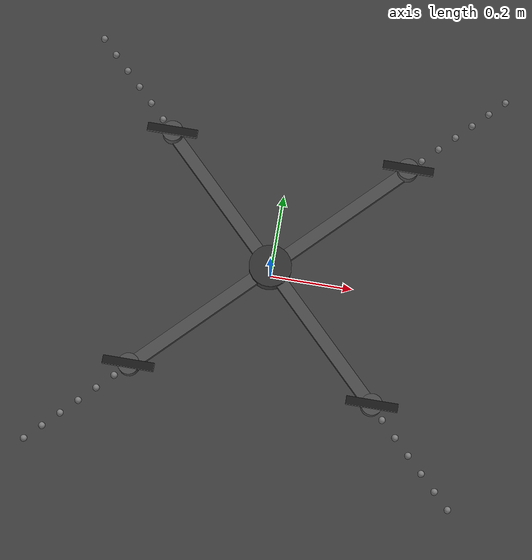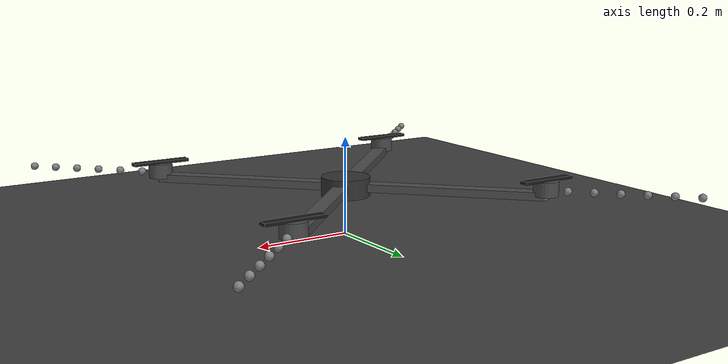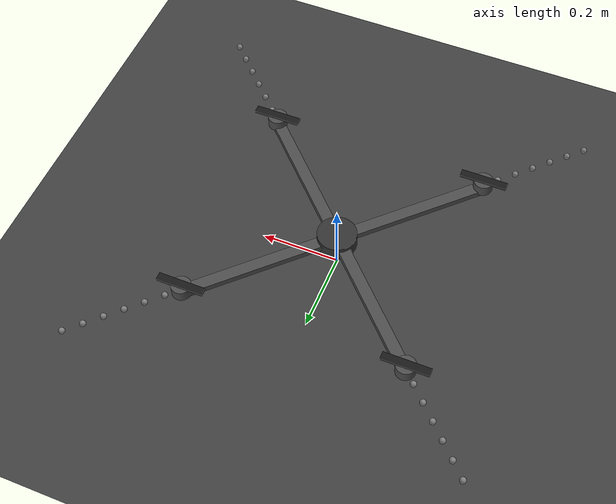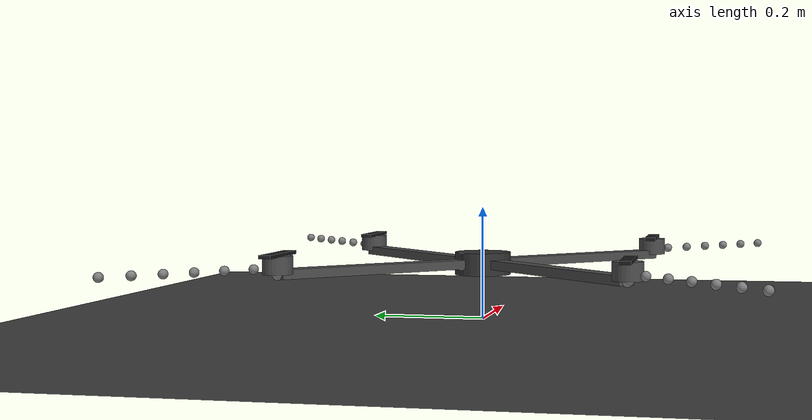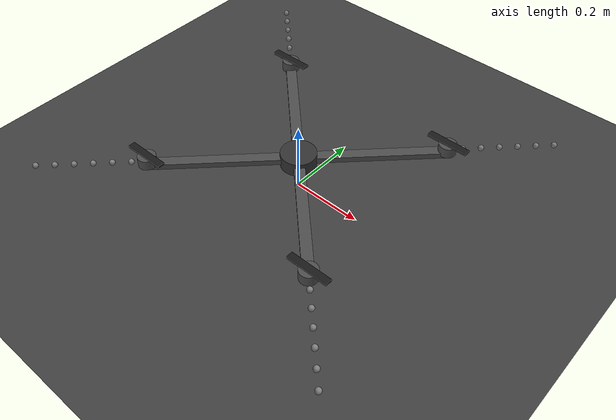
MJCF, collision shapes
<mujoco model="spinning_drone">
  <compiler angle="degree"/>
  <option timestep="0.001" gravity="0 0 -9.81" integrator="RK4"/>

  <visual>
    <headlight ambient="0.5 0.5 0.5"/>
  </visual>

  <asset>
    <texture name="grid" type="2d" builtin="checker" width="512" height="512" rgb1="0.2 0.2 0.2" rgb2="0.3 0.3 0.3"/>
    <material name="grid" texture="grid" texrepeat="1 1" texuniform="true" reflectance="0.2"/>
    <material name="wing_mat" rgba="0.8 0.3 0.1 0.8"/>
    <material name="motor_mat" rgba="0.3 0.3 0.3 1"/>
    <material name="prop_mat" rgba="0.1 0.1 0.1 0.7"/>

    <!-- Wing blade mesh -->
    <mesh name="wing_blade" file="feb_wing.stl" scale="0.001 0.001 0.001"/>
  </asset>

  <worldbody>
    <light pos="0 0 5" dir="0 0 -1" diffuse="0.8 0.8 0.8"/>
    <geom name="floor" type="plane" size="10 10 0.1" material="grid"/>

    <!-- Main drone body - 800g total mass (quad body + 4 motors) -->
    <!-- Motor bodies add ~293g from geometry, so quad body = 507g -->
    <body name="quad" pos="0 0 0.1" quat="1 0 0 0">
      <joint name="root" type="free"/>
      <!-- Inertia for spinning drone: Izz > Ixx = Iyy for yaw stability -->
      <inertial pos="0 0 0" mass="0.507" diaginertia="0.008 0.008 0.012"/>

      <!-- Central hub -->
      <geom type="cylinder" size="0.05 0.02" pos="0 0 0" rgba="0.2 0.2 0.2 1"/>

      <!-- Motor arms (X-configuration) - extend to r=0.4m -->
      <!-- Arm 1: +X+Y direction (45°) -->
      <geom type="box" size="0.20 0.015 0.008" pos="0.14 0.14 0" euler="0 0 45" rgba="0.3 0.3 0.3 1"/>
      <!-- Arm 2: -X+Y direction (135°) -->
      <geom type="box" size="0.20 0.015 0.008" pos="-0.14 0.14 0" euler="0 0 -45" rgba="0.3 0.3 0.3 1"/>
      <!-- Arm 3: -X-Y direction (225°) -->
      <geom type="box" size="0.20 0.015 0.008" pos="-0.14 -0.14 0" euler="0 0 45" rgba="0.3 0.3 0.3 1"/>
      <!-- Arm 4: +X-Y direction (315°) -->
      <geom type="box" size="0.20 0.015 0.008" pos="0.14 -0.14 0" euler="0 0 -45" rgba="0.3 0.3 0.3 1"/>

      <!-- MOTOR 1: Position at r=0.4m, angle=45° (+X+Y) -->
      <!-- Position: (0.4*cos(45°), 0.4*sin(45°), 0) = (0.283, 0.283, 0) -->
      <!-- Tilt axis: tangent to circle = (-sin(45°), cos(45°), 0) = (-0.707, 0.707, 0) -->
      <body name="motor1" pos="0.283 0.283 0">
        <!-- Tilt joint: rotates thrust vector tangentially (in direction of spin) -->
        <joint name="motor1_tilt" type="hinge" axis="-0.707 0.707 0" range="-60 60" damping="0.1"/>
        <geom type="cylinder" size="0.025 0.015" pos="0 0 0.015" material="motor_mat"/>
        <geom type="box" size="0.06 0.01 0.003" pos="0 0 0.032" material="prop_mat"/>
        <site name="thrust1" pos="0 0 0" size="0.01"/>
      </body>

      <!-- MOTOR 2: Position at r=0.4m, angle=135° (-X+Y) -->
      <!-- Position: (0.4*cos(135°), 0.4*sin(135°), 0) = (-0.283, 0.283, 0) -->
      <!-- Tilt axis: tangent = (-sin(135°), cos(135°), 0) = (-0.707, -0.707, 0) -->
      <body name="motor2" pos="-0.283 0.283 0">
        <joint name="motor2_tilt" type="hinge" axis="-0.707 -0.707 0" range="-60 60" damping="0.1"/>
        <geom type="cylinder" size="0.025 0.015" pos="0 0 0.015" material="motor_mat"/>
        <geom type="box" size="0.06 0.01 0.003" pos="0 0 0.032" material="prop_mat"/>
        <site name="thrust2" pos="0 0 0" size="0.01"/>
      </body>

      <!-- MOTOR 3: Position at r=0.4m, angle=225° (-X-Y) -->
      <!-- Position: (-0.283, -0.283, 0) -->
      <!-- Tilt axis: tangent = (-sin(225°), cos(225°), 0) = (0.707, -0.707, 0) -->
      <body name="motor3" pos="-0.283 -0.283 0">
        <joint name="motor3_tilt" type="hinge" axis="0.707 -0.707 0" range="-60 60" damping="0.1"/>
        <geom type="cylinder" size="0.025 0.015" pos="0 0 0.015" material="motor_mat"/>
        <geom type="box" size="0.06 0.01 0.003" pos="0 0 0.032" material="prop_mat"/>
        <site name="thrust3" pos="0 0 0" size="0.01"/>
      </body>

      <!-- MOTOR 4: Position at r=0.4m, angle=315° (+X-Y) -->
      <!-- Position: (0.283, -0.283, 0) -->
      <!-- Tilt axis: tangent = (-sin(315°), cos(315°), 0) = (0.707, 0.707, 0) -->
      <body name="motor4" pos="0.283 -0.283 0">
        <joint name="motor4_tilt" type="hinge" axis="0.707 0.707 0" range="-60 60" damping="0.1"/>
        <geom type="cylinder" size="0.025 0.015" pos="0 0 0.015" material="motor_mat"/>
        <geom type="box" size="0.06 0.01 0.003" pos="0 0 0.032" material="prop_mat"/>
        <site name="thrust4" pos="0 0 0" size="0.01"/>
      </body>

      <!-- WING 1: Blade from r=0.4m to r=0.65m along +X+Y direction (45°) -->
      <!-- Wing sections for force application -->
      <!-- Wing body at root position (r=0.4m) for controlled rotation -->
      <body name="wing1_root" pos="0.283 0.283 0.01" euler="0 0 45">
        <!-- Massless wing - visual only -->
        <inertial pos="0 0 0" mass="0.001" diaginertia="0.000001 0.000001 0.000001"/>
        <!-- Wing visual geometry - positioned relative to wing root -->
        <!-- Adjust the pos offset here if your STL origin isn't at root -->
        <geom name="wing1_vis" type="mesh" mesh="wing_blade" pos="-0.12 0.25 0" euler="0 90 180" material="wing_mat" contype="0" conaffinity="0"/>

        <!-- Wing section sites in LOCAL coordinates (along +X from root) -->
        <site name="wing1_s1" pos="0.042 0 0" size="0.008"/>  <!-- r=0.42, 0.042m from root -->
        <site name="wing1_s2" pos="0.092 0 0" size="0.008"/>  <!-- r=0.46, 0.092m from root -->
        <site name="wing1_s3" pos="0.142 0 0" size="0.008"/>
        <site name="wing1_s4" pos="0.192 0 0" size="0.008"/>
        <site name="wing1_s5" pos="0.242 0 0" size="0.008"/>
        <site name="wing1_s6" pos="0.292 0 0" size="0.008"/>
      </body>

      <!-- WING 2: Blade from r=0.4m to r=0.65m along -X+Y direction (135°) -->
      <body name="wing2_root" pos="-0.283 0.283 0.01" euler="0 0 135">
        <inertial pos="0 0 0" mass="0.001" diaginertia="0.000001 0.000001 0.000001"/>
        <geom name="wing2_vis" type="mesh" mesh="wing_blade" pos="-0.12 0.25 0" euler="0 90 180" material="wing_mat" contype="0" conaffinity="0"/>
        <site name="wing2_s1" pos="0.042 0 0" size="0.008"/>
        <site name="wing2_s2" pos="0.092 0 0" size="0.008"/>
        <site name="wing2_s3" pos="0.142 0 0" size="0.008"/>
        <site name="wing2_s4" pos="0.192 0 0" size="0.008"/>
        <site name="wing2_s5" pos="0.242 0 0" size="0.008"/>
        <site name="wing2_s6" pos="0.292 0 0" size="0.008"/>
      </body>

      <!-- WING 3: Blade from r=0.4m to r=0.65m along -X-Y direction (225°) -->
      <body name="wing3_root" pos="-0.283 -0.283 0.01" euler="0 0 225">
        <inertial pos="0 0 0" mass="0.001" diaginertia="0.000001 0.000001 0.000001"/>
        <geom name="wing3_vis" type="mesh" mesh="wing_blade" pos="-0.12 0.25 0" euler="0 90 180" material="wing_mat" contype="0" conaffinity="0"/>
        <site name="wing3_s1" pos="0.042 0 0" size="0.008"/>
        <site name="wing3_s2" pos="0.092 0 0" size="0.008"/>
        <site name="wing3_s3" pos="0.142 0 0" size="0.008"/>
        <site name="wing3_s4" pos="0.192 0 0" size="0.008"/>
        <site name="wing3_s5" pos="0.242 0 0" size="0.008"/>
        <site name="wing3_s6" pos="0.292 0 0" size="0.008"/>
      </body>

      <!-- WING 4: Blade from r=0.4m to r=0.65m along +X-Y direction (315°) -->
      <body name="wing4_root" pos="0.283 -0.283 0.01" euler="0 0 315">
        <inertial pos="0 0 0" mass="0.001" diaginertia="0.000001 0.000001 0.000001"/>
        <geom name="wing4_vis" type="mesh" mesh="wing_blade" pos="-0.12 0.25 0" euler="0 90 180" material="wing_mat" contype="0" conaffinity="0"/>
        <site name="wing4_s1" pos="0.042 0 0" size="0.008"/>
        <site name="wing4_s2" pos="0.092 0 0" size="0.008"/>
        <site name="wing4_s3" pos="0.142 0 0" size="0.008"/>
        <site name="wing4_s4" pos="0.192 0 0" size="0.008"/>
        <site name="wing4_s5" pos="0.242 0 0" size="0.008"/>
        <site name="wing4_s6" pos="0.292 0 0" size="0.008"/>
      </body>

      <!-- Camera for visualization -->
      <camera name="track" mode="trackcom" pos="0 -2 1.5" xyaxes="1 0 0 0 0.5 1"/>
      <camera name="top" mode="trackcom" pos="0 0 3" xyaxes="1 0 0 0 1 0"/>
    </body>
  </worldbody>

  <!-- Actuators for motor tilt control (visual only - flight forces applied via mj_applyFT) -->
  <!-- Low kp to avoid reaction torques launching the drone -->
  <actuator>
    <position name="tilt1" joint="motor1_tilt" kp="2" ctrlrange="-60 60"/>
    <position name="tilt2" joint="motor2_tilt" kp="2" ctrlrange="-60 60"/>
    <position name="tilt3" joint="motor3_tilt" kp="2" ctrlrange="-60 60"/>
    <position name="tilt4" joint="motor4_tilt" kp="2" ctrlrange="-60 60"/>
  </actuator>
</mujoco>
